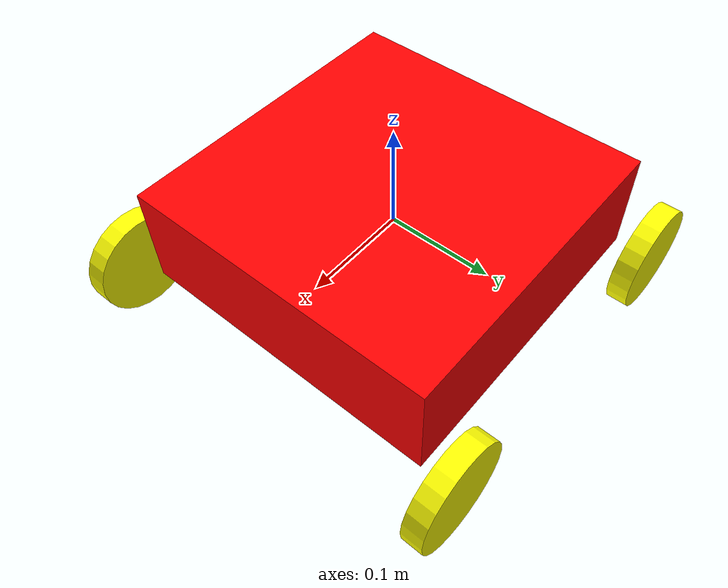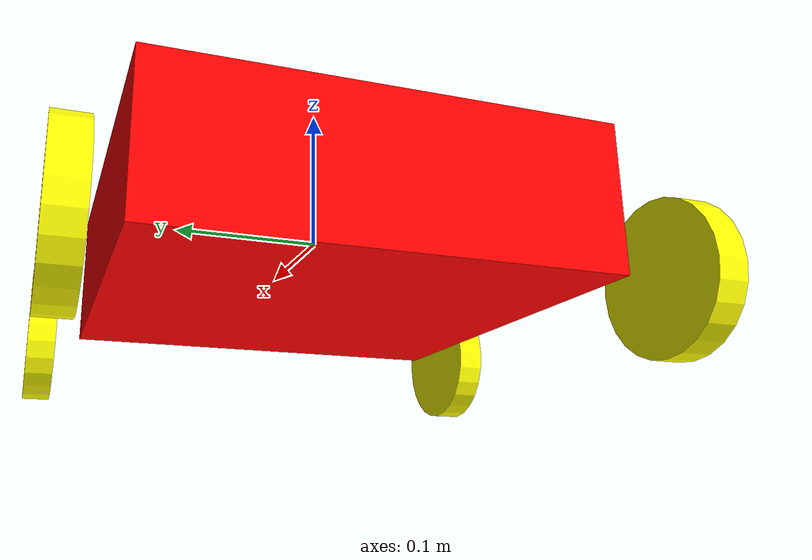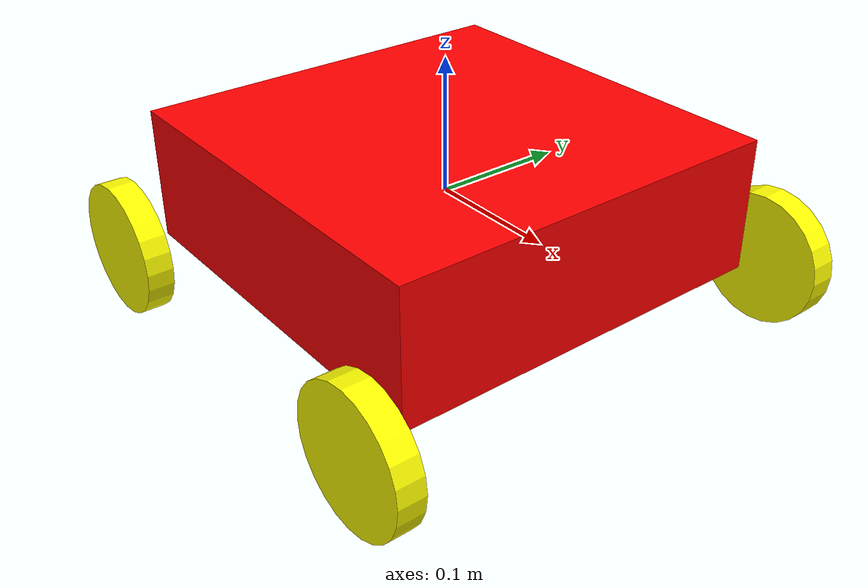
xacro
<?xml version="1.0"?>
<robot name="agent_robot" xmlns:xacro="http://www.ros.org/wiki/xacro">
  <!-- parametros -->
  <xacro:property name="wheel_radius" value="0.05"/>
  <xacro:property name="wheel_width" value="0.02"/>
  <xacro:property name="base_size" value="0.3"/>

  <xacro:property name="half_base" value="${base_size/2}"/>
  <xacro:property name="wheel_y" value="${half_base + 0.03}"/>
  <xacro:property name="wheel_x" value="${half_base}"/>

  <!-- base del robot -->
  <link name="base_link">
    <visual>
      <origin xyz="0 0 0" rpy="0 0 0"/>
      <geometry>
        <box size="${base_size} ${base_size} 0.1"/>
      </geometry>
      <material name="blue">
        <color rgba="1 0 0 1"/>
      </material>
    </visual>
  </link>

  <!-- rueda izquierda anterior-->
  <link name="left_wheel_a">
    <visual>
      <origin rpy="1.57 0 0"/>
      <geometry>
        <cylinder radius="${wheel_radius}" length="${wheel_width}"/>
      </geometry>
      <material name="black">
        <color rgba="1 1 0 1"/>
      </material>
    </visual>
  </link>

  <!-- rueda izquierda posterior-->
  <link name="left_wheel_p">
    <visual>
      <origin rpy="1.57 0 0"/>
      <geometry>
        <cylinder radius="${wheel_radius}" length="${wheel_width}"/>
      </geometry>
      <material name="black">
        <color rgba="1 1 0 1"/>
      </material>
    </visual>
  </link>

  <!-- rueda derecha anterior-->
  <link name="right_wheel_a">
    <visual>
      <origin rpy="1.57 0 0"/>
      <geometry>
        <cylinder radius="${wheel_radius}" length="${wheel_width}"/>
      </geometry>
      <material name="black">
        <color rgba="1 1 0 1"/>
      </material>
    </visual>
  </link>

  <!-- rueda derecha posterior -->
  <link name="right_wheel_p">
    <visual>
      <origin rpy="1.57 0 0"/>
      <geometry>
        <cylinder radius="${wheel_radius}" length="${wheel_width}"/>
      </geometry>
      <material name="black">
        <color rgba="1 1 0 1"/>
      </material>
    </visual>
  </link>

  <!-- joint rueda izquierda-anterior-base -->
  <joint name="left_wheel_joint_a" type="continuous">
    <parent link="base_link"/>
    <child link="left_wheel_a"/>
    <origin xyz="${wheel_x} ${wheel_y} -${wheel_radius}"/>
    <axis xyz="0 1 0"/>
  </joint>

  <!-- joint rueda izquierda-posterior-base -->
  <joint name="left_wheel_joint_p" type="continuous">
    <parent link="base_link"/>
    <child link="left_wheel_p"/>
    <origin xyz="-${wheel_x} ${wheel_y} -${wheel_radius}"/>
    <axis xyz="0 1 0"/>
  </joint>

  <!-- joint rueda derecha-anterior-base -->
  <joint name="right_wheel_joint_a" type="continuous">
    <parent link="base_link"/>
    <child link="right_wheel_a"/>
    <origin xyz="${wheel_x} -${wheel_y} -${wheel_radius}"/>
    <axis xyz="0 1 0"/>
  </joint>

   <!-- joint rueda derecha-posterior-base -->
  <joint name="right_wheel_joint_p" type="continuous">
    <parent link="base_link"/>
    <child link="right_wheel_p"/>
    <origin xyz="-${wheel_x} -${wheel_y} -${wheel_radius}"/>
    <axis xyz="0 1 0"/>
  </joint>
</robot>
